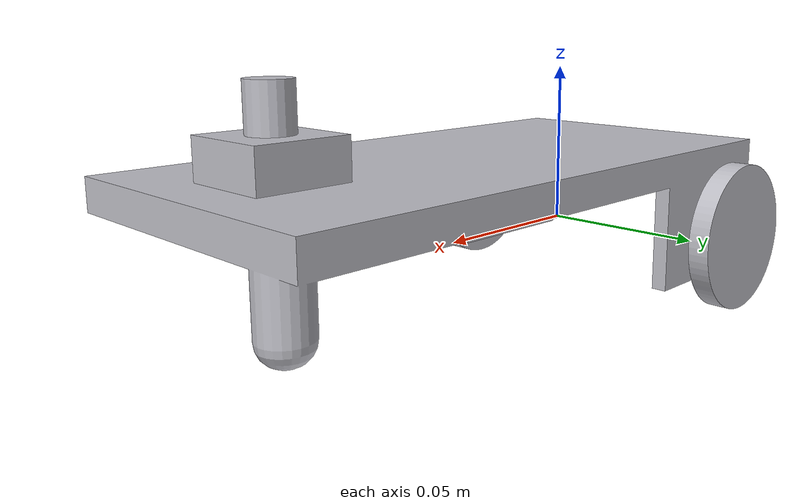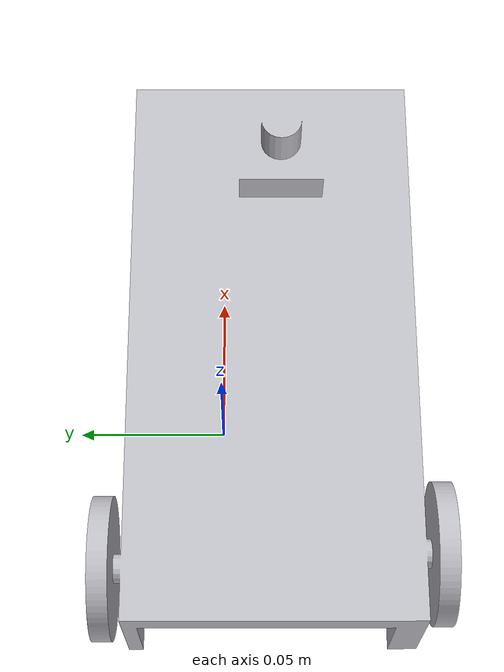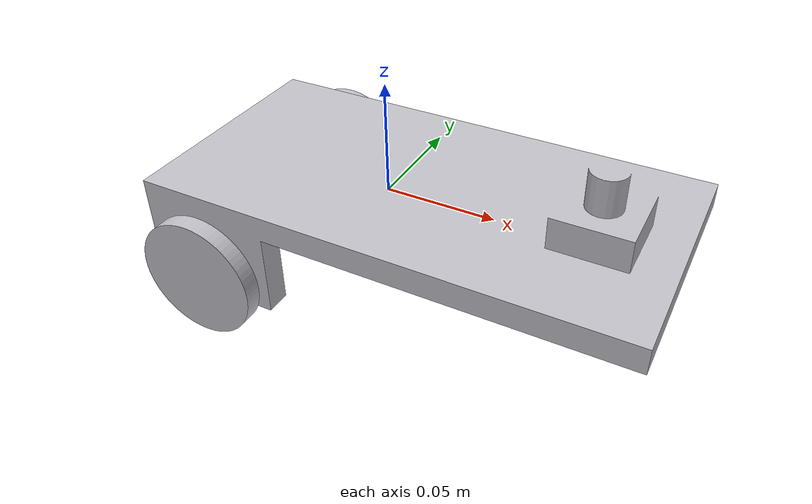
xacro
<?xml version="1.0" ?>
<robot name="FusionComponent" xmlns:xacro="http://www.ros.org/wiki/xacro">

<xacro:include filename="$(find FusionComponent_description)/urdf/materials.xacro" />
<xacro:include filename="$(find FusionComponent_description)/urdf/FusionComponent.trans" />
<xacro:include filename="$(find FusionComponent_description)/urdf/FusionComponent.gazebo" />
<link name="base_link">
  <inertial>
    <origin xyz="-0.016557523766961034 -2.45872618857107e-05 -0.0058840040455593245" rpy="0 0 0"/>
    <mass value="2.063351837070663"/>
    <inertia ixx="0.002087" iyy="0.007887" izz="0.009536" ixy="-0.000205" iyz="-5.2e-05" ixz="-0.000348"/>
  </inertial>
  <visual>
    <origin xyz="0 0 0" rpy="0 0 0"/>
    <geometry>
      <mesh filename="package://FusionComponent_description/meshes/base_link.stl" scale="0.001 0.001 0.001"/>
    </geometry>
    <material name="silver"/>
  </visual>
  <collision>
    <origin xyz="0 0 0" rpy="0 0 0"/>
    <geometry>
      <mesh filename="package://FusionComponent_description/meshes/base_link.stl" scale="0.001 0.001 0.001"/>
    </geometry>
  </collision>
</link>

<link name="wheel_2_1">
  <inertial>
    <origin xyz="-4.5469538814679744e-07 -0.0034997972344619904 6.905225762715572e-09" rpy="0 0 0"/>
    <mass value="0.10789407269672445"/>
    <inertia ixx="1.7e-05" iyy="3.4e-05" izz="1.7e-05" ixy="0.0" iyz="0.0" ixz="0.0"/>
  </inertial>
  <visual>
    <origin xyz="0.084737 0.053392 0.027999" rpy="0 0 0"/>
    <geometry>
      <mesh filename="package://FusionComponent_description/meshes/wheel_2_1.stl" scale="0.001 0.001 0.001"/>
    </geometry>
    <material name="silver"/>
  </visual>
  <collision>
    <origin xyz="0.084737 0.053392 0.027999" rpy="0 0 0"/>
    <geometry>
      <mesh filename="package://FusionComponent_description/meshes/wheel_2_1.stl" scale="0.001 0.001 0.001"/>
    </geometry>
  </collision>
</link>

<link name="wheel_1_1">
  <inertial>
    <origin xyz="-4.5469538656472963e-07 0.003500202765535372 6.9052261859881e-09" rpy="0 0 0"/>
    <mass value="0.10789407269672448"/>
    <inertia ixx="1.7e-05" iyy="3.4e-05" izz="1.7e-05" ixy="0.0" iyz="0.0" ixz="0.0"/>
  </inertial>
  <visual>
    <origin xyz="0.089737 -0.056608 0.028249" rpy="0 0 0"/>
    <geometry>
      <mesh filename="package://FusionComponent_description/meshes/wheel_1_1.stl" scale="0.001 0.001 0.001"/>
    </geometry>
    <material name="silver"/>
  </visual>
  <collision>
    <origin xyz="0.089737 -0.056608 0.028249" rpy="0 0 0"/>
    <geometry>
      <mesh filename="package://FusionComponent_description/meshes/wheel_1_1.stl" scale="0.001 0.001 0.001"/>
    </geometry>
  </collision>
</link>

<joint name="Rev1" type="continuous">
  <origin xyz="-0.084737 -0.053392 -0.027999" rpy="0 0 0"/>
  <parent link="base_link"/>
  <child link="wheel_2_1"/>
  <axis xyz="-0.0 1.0 -0.0"/>
</joint>

<joint name="Rev2" type="continuous">
  <origin xyz="-0.089737 0.056608 -0.028249" rpy="0 0 0"/>
  <parent link="base_link"/>
  <child link="wheel_1_1"/>
  <axis xyz="0.0 1.0 0.0"/>
</joint>

</robot>

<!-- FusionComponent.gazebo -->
<robot name="FusionComponent" xmlns:xacro="http://www.ros.org/wiki/xacro" >

<xacro:property name="body_color" value="Gazebo/Silver" />

<gazebo>
  <plugin name="control" filename="libgazebo_ros_control.so"/>
</gazebo>
<gazebo reference="base_link">
  <material>${body_color}</material>
  <mu1>0.2</mu1>
  <mu2>0.2</mu2>
  <selfCollide>true</selfCollide>
  <gravity>true</gravity>
</gazebo>

<gazebo reference="wheel_2_1">
  <material>${body_color}</material>
  <mu1>0.2</mu1>
  <mu2>0.2</mu2>
  <selfCollide>true</selfCollide>
</gazebo>

<gazebo reference="wheel_1_1">
  <material>${body_color}</material>
  <mu1>0.2</mu1>
  <mu2>0.2</mu2>
  <selfCollide>true</selfCollide>
</gazebo>
  <gazebo>
  <plugin name="differential_drive_controller" filename="libgazebo_ros_diff_drive.so">

    <!-- Plugin update rate in Hz -->
    <updateRate>${1000}</updateRate>

    <!-- Name of left joint, defaults to `left_joint` -->
    <leftJoint>Rev2</leftJoint>

    <!-- Name of right joint, defaults to `right_joint` -->
    <rightJoint>Rev1</rightJoint>

    <!-- The distance from the center of one wheel to the other, in meters, defaults to 0.34 m -->
    <wheelSeparation>0.5380</wheelSeparation>

    <!-- Diameter of the wheels, in meters, defaults to 0.15 m -->
    <wheelDiameter>0.2410</wheelDiameter>

    <!-- Wheel acceleration, in rad/s^2, defaults to 0.0 rad/s^2 -->
    <wheelAcceleration>1.0</wheelAcceleration>

    <!-- Maximum torque which the wheels can produce, in Nm, defaults to 5 Nm -->
    <wheelTorque>20</wheelTorque>

    <!-- Topic to receive geometry_msgs/Twist message commands, defaults to `cmd_vel` -->
    <commandTopic>cmd_vel</commandTopic>

    <!-- Topic to publish nav_msgs/Odometry messages, defaults to `odom` -->
    <odometryTopic>odom</odometryTopic>

    <!-- Odometry frame, defaults to `odom` -->
    <odometryFrame>odom</odometryFrame>

    <!-- Robot frame to calculate odometry from, defaults to `base_footprint` -->
    <robotBaseFrame>base_footprint</robotBaseFrame>

    <!-- Odometry source, 0 for ENCODER, 1 for WORLD, defaults to WORLD -->
    <odometrySource>1</odometrySource>

    <!-- Set to true to publish transforms for the wheel links, defaults to false -->
    <publishWheelTF>true</publishWheelTF>

    <!-- Set to true to publish transforms for the odometry, defaults to true -->
    <publishOdom>true</publishOdom>

    <!-- Set to true to publish sensor_msgs/JointState on /joint_states for the wheel joints, defaults to false -->
    <publishWheelJointState>true</publishWheelJointState>

    <!-- Set to true to swap right and left wheels, defaults to true -->
    <legacyMode>false</legacyMode>
  </plugin>
</gazebo>

</robot>
